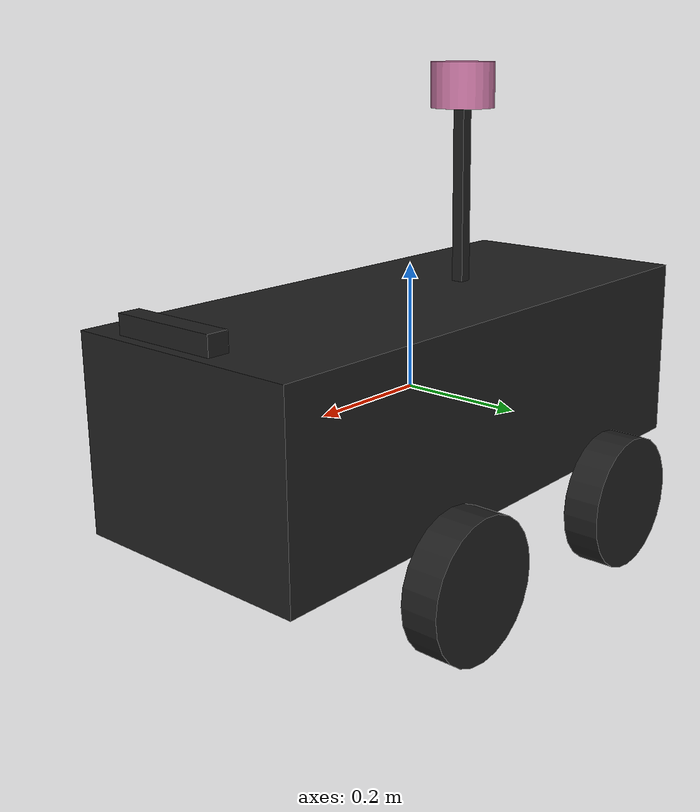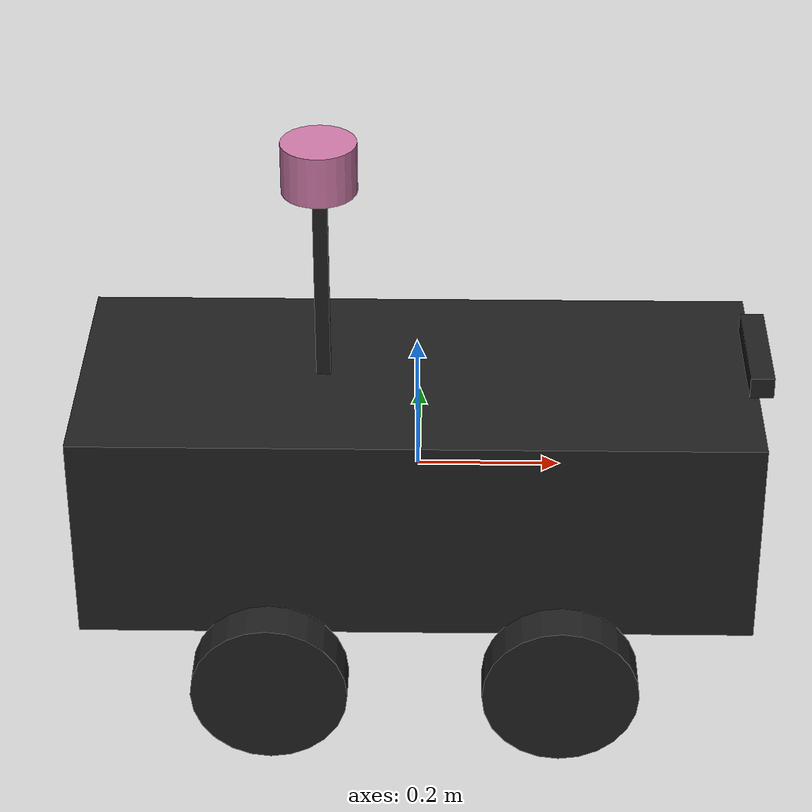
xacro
<?xml version="1.0"?>
<robot xmlns:xacro="http://www.ros.org/wiki/xacro" name="choo_choo">

    <xacro:property name="robot" value="choo_choo"/>
    <!-- physical parameters of robot, all in SI (meters, kg) -->
    <!-- base dimensions -->
    <xacro:property name="base_mass" value="45.36" />
    <xacro:property name="base_width" value="0.4" />     <!-- width=y -->
    <xacro:property name="base_length" value="0.9398" />    <!-- length=x -->
    <xacro:property name="base_height" value="0.305" />     <!-- height=z -->
    <!-- wheel properties -->
    <xacro:property name="wheel_radius" value="0.10795" />
    <xacro:property name="wheel_width" value="0.059" />
    <!-- differential properties -->
    <xacro:property name="wheel_mass" value="1.179" />
    <xacro:property name="wheelbase" value="0.40" />
    <xacro:property name="track_width" value="0.54" />
    <xacro:property name="wheel_offset_x" value="${wheelbase / 2}" />
    <xacro:property name="wheel_offset_y" value="${track_width / 2}" />
    <xacro:property name="wheel_offset_z" value="-0.186475" />
    <!-- lidar stalk properties -->
    <xacro:property name="lidar_stalk_height" value="0.330" />
    <xacro:property name="lidar_stalk_side" value="0.020" />
    <xacro:property name="lidar_stalk_offset_x" value="-0.1311" />
    <xacro:property name="lidar_stalk_offset_y" value="0.0" />
    <xacro:property name="lidar_stalk_offset_z" value="${base_height / 2}" />
    <!-- lidar properties -->
    <xacro:property name="lidar_mass" value="0.830" />
    <xacro:property name="lidar_height" value="0.0717" />
    <xacro:property name="lidar_radius" value="0.0516" />
    <!-- imu properties -->
    <xacro:property name="imu_offset_x" value="0.0" />
    <xacro:property name="imu_offset_y" value="0.0" />
    <xacro:property name="imu_offset_z" value="0.0" />
    <!-- stereo camera properties -->
    <xacro:property name="cam_mass" value="0.170" />
    <xacro:property name="cam_width" value="0.175" />     <!-- width=y -->
    <xacro:property name="cam_length" value="0.033" />    <!-- length=x -->
    <xacro:property name="cam_height" value="0.030" />     <!-- height=z -->
    <xacro:property name="cam_offset_x" value="${base_length / 2}" />
    <xacro:property name="cam_offset_y" value="0.0" />
    <xacro:property name="cam_offset_z" value="${(base_height / 2) + cam_height}" />

    <xacro:macro name="box_total" params="name mass width height length">
        <link name="${name}">
            <gazebo reference="${name}">
                <material>Gazebo/Black</material>
                <gravity>true</gravity>
            </gazebo>
            <collision name="${name}_collision">
                <origin xyz="0 0 0" rpy="0 0 0"/>
                <geometry>
                    <box size="${length} ${width} ${height}"/>
                </geometry>
            </collision>
            <visual name="${name}_visual">
                <origin xyz="0 0 0" rpy="0 0 0"/>
                <geometry>
                    <box size="${length} ${width} ${height}"/>
                </geometry>
            </visual>
            <inertial name="${name}_inertial">
                <mass value="${mass}" />
                <!-- 3D inertia tensor from: https://en.wikipedia.org/wiki/List_of_moments_of_inertia -->
                <inertia ixx="${mass*(height*height+length*length)/12}" ixy="0.0" ixz="0.0"
                        iyy="${mass*(height*height+width*width)/12}" iyz="0.0"
                        izz="${mass*(length*length+width*width)/12}" />
            </inertial>
        </link>
    </xacro:macro>
    <xacro:macro name="box_inertia" params="name mass width height length">
        <inertial name="${name}_inertia">
            <mass value="${mass}" />
            <!-- 3D inertia tensor from: https://en.wikipedia.org/wiki/List_of_moments_of_inertia -->
            <inertia ixx="${mass*((height*height)+(length*length))/12}" ixy="0.0" ixz="0.0"
                     iyy="${mass*((height*height)+(width*width))/12}" iyz="0.0"
                     izz="${mass*((length*length)+(width*width))/12}" />
        </inertial>
    </xacro:macro>
    <xacro:macro name="cylinder_inertia" params="name height radius mass">
        <inertial name="${name}">
            <mass value="${mass}" />
            <!-- 3D inertia tensor from: https://en.wikipedia.org/wiki/List_of_moments_of_inertia -->
            <inertia ixx="${mass*(height*height+3*radius*radius)/12}" ixy="0.0" ixz="0.0"
                    iyy="${mass*((height*height)+(3*(radius*radius)))/12}" iyz="0.0"
                    izz="${mass*(radius*radius)/2}" />
        </inertial>
    </xacro:macro>
    <xacro:macro name="wheel" params="name wheel_radius wheel_width wheel_mass" >
        <link name="${name}">
            <gazebo reference="${name}">
                <material>Gazebo/Black</material>
                <gravity>true</gravity>
                <surface>
                    <friction>
                        <ode>
                            <mu>1</mu>
                            <mu2>0</mu2>
                            <fdir1>0 1.0 0</fdir1>
                            <implicit_spring_damper>true</implicit_spring_damper>
                        </ode>
                    </friction>
                </surface>
            </gazebo>
            <collision name="${name}_collision">
                <origin xyz="0 0 0" rpy="-1.5707 0 0"/>
                <geometry>
                    <cylinder radius="${wheel_radius}" length="${wheel_width}"/>
                </geometry>
            </collision>
            <visual name="${name}_visual">
                <origin xyz="0 0 0" rpy="-1.5707 0 0"/>
                <geometry>
                    <cylinder radius="${wheel_radius}" length="${wheel_width}"/>
                </geometry>
            </visual>
            <xacro:cylinder_inertia name="${name}" height="${wheel_width}" radius="${wheel_radius}" mass="${wheel_mass}"/>
        </link>
    </xacro:macro>
    <xacro:macro name="wheel_joint" params="name x_offset y_offset z_offset reflect_x reflect_y">
        <joint name="${name}_joint" type="continuous">
            <gazebo reference="${name}_joint">
            </gazebo>
            <parent link="base_link" />
            <child link="${name}" />
            <origin xyz="${(x_offset*reflect_x)} ${(y_offset*reflect_y)} ${z_offset}" />
            <axis xyz="0 1 0"/>
        </joint>
    </xacro:macro>

    <!--
        objects contained within the gazebo tags are for Gazebo simulation use only, ignored otherwise.
        They use SDF format, rather than URDF format
    -->
    <gazebo>
        <static>false</static>
    </gazebo>
    <!-- base link (the box) -->
    <xacro:box_total name="base_link" mass="${base_mass}" width="${base_width}" length="${base_length}" height="${base_height}"/>

    <!-- front left wheel -->
    <xacro:wheel name="front_left_wheel" wheel_radius="${wheel_radius}" wheel_width="${wheel_width}" wheel_mass="${wheel_mass}"/>
    <xacro:wheel_joint name="front_left_wheel" x_offset="${wheel_offset_x}" y_offset="${wheel_offset_y}" z_offset="${wheel_offset_z}" reflect_x="1" reflect_y="1"/>
    <!-- back left wheel -->
    <xacro:wheel name="back_left_wheel" wheel_radius="${wheel_radius}" wheel_width="${wheel_width}" wheel_mass="${wheel_mass}"/>
    <xacro:wheel_joint name="back_left_wheel" x_offset="${wheel_offset_x}" y_offset="${wheel_offset_y}" z_offset="${wheel_offset_z}" reflect_x="-1" reflect_y="1"/>
    <!-- front right wheel -->
    <xacro:wheel name="front_right_wheel" wheel_radius="${wheel_radius}" wheel_width="${wheel_width}" wheel_mass="${wheel_mass}"/>
    <xacro:wheel_joint name="front_right_wheel" x_offset="${wheel_offset_x}" y_offset="${wheel_offset_y}" z_offset="${wheel_offset_z}" reflect_x="1" reflect_y="-1"/>
    <!-- back right wheel-->
    <xacro:wheel name="back_right_wheel" wheel_radius="${wheel_radius}" wheel_width="${wheel_width}" wheel_mass="${wheel_mass}"/>
    <xacro:wheel_joint name="back_right_wheel" x_offset="${wheel_offset_x}" y_offset="${wheel_offset_y}" z_offset="${wheel_offset_z}" reflect_x="-1" reflect_y="-1"/>

    <!-- lidar stalk -->
    <xacro:box_total name="lidar_stalk" mass="0.14982" width="${lidar_stalk_side}" length="${lidar_stalk_side}" height="${lidar_stalk_height}" />
    <joint name="lidar_stalk_joint" type="fixed">
        <gazebo reference="lidar_stalk_joint">
        </gazebo>
        <parent link="base_link"/>
        <child link="lidar_stalk"/>
        <origin xyz="${lidar_stalk_offset_x} ${lidar_stalk_offset_y} ${base_height}" rpy="0 0 0"/>
    </joint>

    <!-- lidar link -->
    <link name="lidar">
        <gazebo reference="lidar">
        </gazebo>
        <collision>
            <origin xyz="0 0 0" rpy="0 0 0"/>
            <geometry>
                <cylinder radius="${lidar_radius}" length="${lidar_height}"/>
            </geometry>
        </collision>
        <visual>
            <origin xyz="0 0 0" rpy="0 0 0"/>
            <geometry>
                <cylinder radius="${lidar_radius}" length="${lidar_height}"/>
            </geometry>
        </visual>
        <xacro:cylinder_inertia name="lidar" height="${lidar_height}" radius="${lidar_radius}" mass="${lidar_mass}" />
    </link>
    <joint name="lidar_joint" type="fixed">
        <gazebo reference="lidar_joint">
        </gazebo>
        <parent link="lidar_stalk" />
        <child link="lidar" />
        <origin xyz="0 0 ${lidar_stalk_height / 2}" />
    </joint>
    <!-- lidar simulation plugin -->
    <gazebo reference="lidar">
        <sensor name="laser_sensor" type="ray">
            <ray>
                <scan>
                    <horizontal>
                        <samples>1875</samples>
                        <resolution>1</resolution>
                        <min_angle>-3.14159</min_angle>
                        <max_angle>3.14159</max_angle>
                    </horizontal>
                    <vertical>
                        <samples>16</samples>
                        <resolution>1</resolution>
                        <min_angle>-0.2618</min_angle>
                        <max_angle>0.2618</max_angle>
                    </vertical>
                </scan>
                <range>
                    <min>0.9</min>
                    <max>130</max>
                    <resolution>0.01</resolution>
                </range>
                <noise>
                    <type>gaussian</type>
                    <mean>0.0</mean>
                    <stddev>0.0</stddev>
                </noise>
            </ray>
            <visualize>false</visualize>
            <plugin name="laser_plugin" filename="libgazebo_ros_velodyne_laser.so">
                <robotNamespace>${robot}</robotNamespace>
                <topicName>velodyne</topicName>
                <frameName>/lidar</frameName>
                <organize_cloud>false</organize_cloud>
                <min_range>0.9</min_range>
                <max_range>130</max_range>
                <gaussianNoise>0.008</gaussianNoise>
            </plugin>
        </sensor>
    </gazebo>

    <!-- imu link -->
    <xacro:box_total name="imu" mass="0.05" width="0.05" height="0.05" length="0.05"/>
    <joint name="imu_joint" type="fixed">
        <gazebo reference="imu_joint">
        </gazebo>
        <parent link="base_link"/>
        <child link="imu"/>
        <origin xyz="${imu_offset_x} ${imu_offset_y} ${imu_offset_z}" rpy="0 0 0" />
    </joint>
    <!-- imu simulation plugin -->
    <gazebo> <!-- can't use reference because gazebo squashes fixed joints + links into base_link -->
        <plugin name="imu_plugin" filename="libgazebo_ros_imu.so">
            <robotNamespace>${robot}</robotNamespace>
            <alwaysOn>true</alwaysOn>
            <bodyName>imu</bodyName>
            <topicName>imu</topicName>
            <frameName>imu</frameName>
            <serviceName>imu_service</serviceName>
            <gaussianNoise>0.0</gaussianNoise>
            <updateRate>50.0</updateRate>
        </plugin>
    </gazebo>

    <gazebo>    <!-- can't put a 'reference' on this or the GPS doesn't work. hmmmmm... -->
        <!-- http://wiki.ros.org/hector_gazebo_plugins#GazeboRosGps -->
        <plugin name="gps_controller" filename="libhector_gazebo_ros_gps.so">
            <robotNamespace>${robot}</robotNamespace>
            <alwaysOn>true</alwaysOn>
            <rosDebugLevel>debug</rosDebugLevel>
            <updateRate>1.0</updateRate>
            <bodyName>base_link</bodyName>
            <topicName>fix</topicName> <!-- output topic-->
            <velocityTopicName>fix_velocity</velocityTopicName>
            <drift>5.0 5.0 5.0</drift>
            <gaussianNoise>0.1 0.1 0.1</gaussianNoise>
            <velocityDrift>0 0 0</velocityDrift>
            <velocityGaussianNoise>0.1 0.1 0.1</velocityGaussianNoise>
            <frameId>map</frameId>

            <!-- references -->
        </plugin>
    </gazebo>

    <!-- stereo camera link -->
    <xacro:box_total name="camera" mass="${cam_mass}" width="${cam_width}" length="${cam_length}" height="${cam_height}"/>
    <joint name="camera_joint" type="fixed">
        <parent link="base_link"/>
        <child link="camera"/>
        <origin xyz="${cam_offset_x} ${cam_offset_y} ${cam_offset_z}" rpy="0 0 0" />
    </joint>
    <!-- stereo camera simulation plugin -->
    <gazebo reference="camera">
        <sensor name="depth_sensor" type="depth">
            <!-- Set always_on only for sensor, not on plugin -->
            <always_on>0</always_on>
            <!-- Set update_rate only for sensor, not on plugin -->
            <updateRate>10</updateRate>

            <camera name="depth_camera">
                <horizontal_fov>1.2</horizontal_fov>
                <image>
                    <width>320</width>
                    <height>240</height>
                </image>
                <clip>
                    <near>0.5</near>
                    <far>5</far>
                </clip>
                <!-- no distortions: "ideal" camera -->
                <distortion>
                    <k1>0.0</k1>
                    <k2>0.0</k2>
                    <k3>0.0</k3>
                    <p1>0.0</p1>
                    <p2>0.0</p2>
                    <center>0.0 0.0</center>
                </distortion>
            </camera>

            <visualize>true</visualize>

            <plugin name="depth_cam_plugin" filename="libgazebo_ros_depth_camera.so">
                <robotNamespace>${robot}</robotNamespace>
                <always_on>true</always_on>
                <updateRate>0.0</updateRate> <!-- use sensor rate -->
                <cameraName>depth_cam</cameraName>

                <baseline>0.05</baseline>
                <pointCloudCutoff>0.05</pointCloudCutoff>
                <pointCloudCutoffMax>5</pointCloudCutoffMax>

                <!-- configure output topics; will be prepended with robotNamespace value (AKA relative names) -->
                <imageTopicName>image/image</imageTopicName>
                <cameraInfoTopicName>image/camera_info</cameraInfoTopicName>
                <depthImageTopicName>depth/image</depthImageTopicName>
                <depthImageCameraInfoTopicName>depth/camera_info</depthImageCameraInfoTopicName>
                <pointCloudTopicName>depth/points</pointCloudTopicName>

                <!-- Set TF frame name. If empty, defaults to link name (i.e. "link_name") -->
                <frameName>/camera_depth_link</frameName> <!-- namespaced -->

                <distortionK1>0.0</distortionK1>
                <distortionK2>0.0</distortionK2>
                <distortionK3>0.0</distortionK3>
                <distortionT1>0.0</distortionT1>
                <distortionT2>0.0</distortionT2>
            </plugin>
        </sensor>
    </gazebo>

    <!-- a simulation workaround to fix the broken point cloud orientation -->
    <!-- https://answers.ros.org/question/218395/libgazebo_ros_openni_kinectso-depth-pointcloud-wrong-tf/?answer=218749#post-id-218749 -->
    <joint name="camera_depth_joint" type="fixed">
        <parent link="camera"/>
        <child link="camera_depth_link"/>
        <origin xyz="0.0  0.0  0.0" rpy="-1.5708 0 -1.5708"/>
    </joint>
    <link name="camera_depth_link"></link>

    <!-- skid steer plugin -->
    <gazebo>
        <plugin name="skid_steer_drive_controller" filename="libgazebo_ros_skid_steer_drive.so">
            <updateRate>100.0</updateRate>
            <robotNamespace>${robot}</robotNamespace>
            <leftFrontJoint>front_left_wheel_joint</leftFrontJoint>
            <rightFrontJoint>front_right_wheel_joint</rightFrontJoint>
            <leftRearJoint>back_left_wheel_joint</leftRearJoint>
            <rightRearJoint>back_right_wheel_joint</rightRearJoint>
            <wheelSeparation>${track_width}</wheelSeparation>
            <wheelDiameter>${wheel_radius * 2}</wheelDiameter>
            <robotBaseFrame>base_link</robotBaseFrame>
            <torque>4</torque>

            <commandTopic>/cmd_vel</commandTopic>
            <odometryTopic>odom</odometryTopic>
            <odometryFrame>/odom</odometryFrame>
            <broadcastTF>false</broadcastTF>
        </plugin>
    </gazebo>
</robot>
